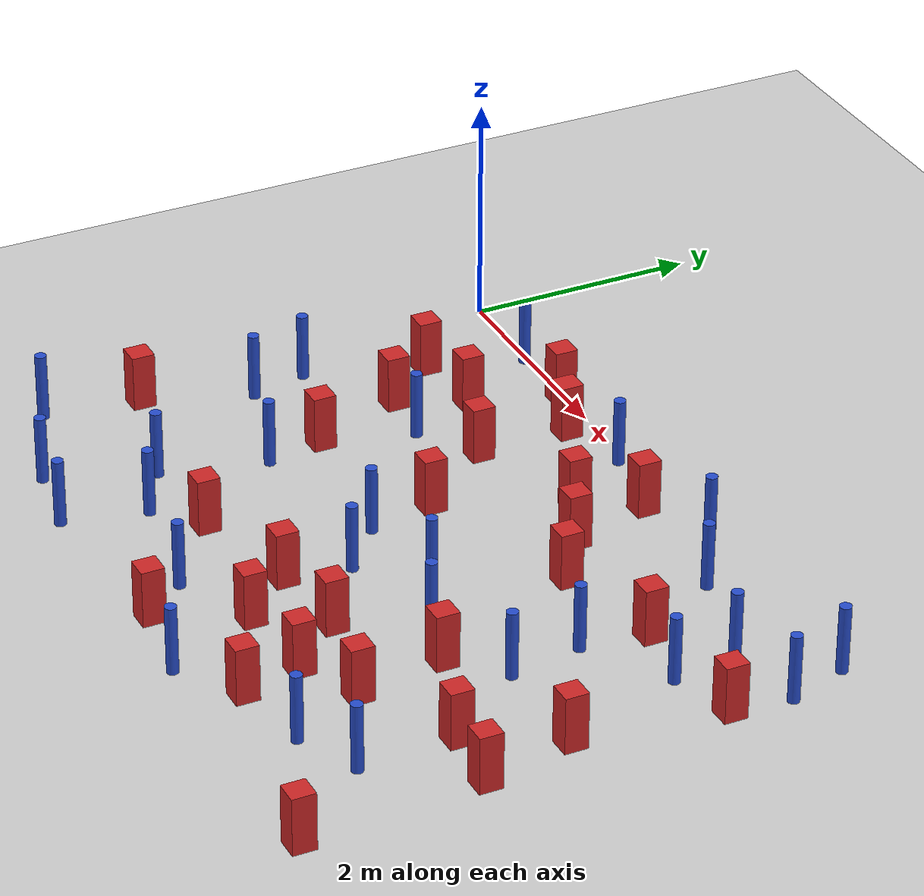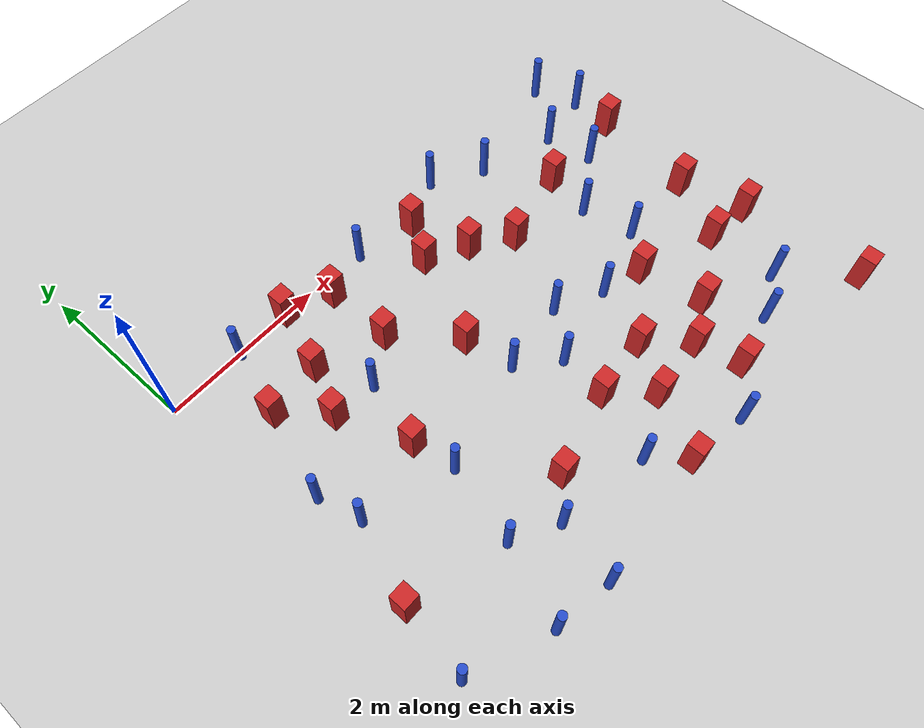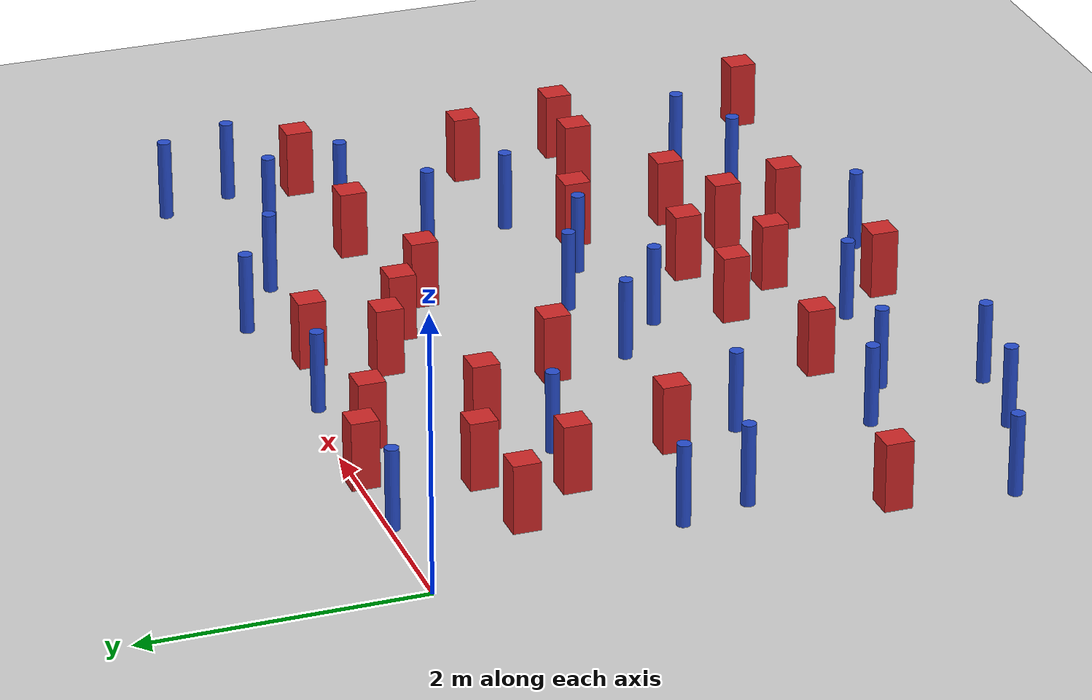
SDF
<sdf version="1.6">
 <world name="default">
  <model name="ground_plane">
   <static>1</static>
   <link name="link">
    <collision name="collision">
     <geometry><plane><normal>0 0 1</normal><size>100 100</size></plane></geometry>
     <surface><friction><ode><mu>100</mu><mu2>50</mu2></ode></friction></surface>
    </collision>
    <visual name="visual">
     <cast_shadows>0</cast_shadows>
     <geometry><plane><normal>0 0 1</normal><size>100 100</size></plane></geometry>
     <material>
      <ambient>1.0 1.0 1.0 1.0</ambient>
      <diffuse>0.8 0.8 0.8 1.0</diffuse>
      <specular>0.01 0.01 0.01 1.000000</specular>
     </material>
    </visual>
   </link>
  </model>
  <model name="NamedLocations">
   <static>true</static>
   <link name="DefaultStart"><pose>8.5 0 0 0 0 3.14</pose></link>
  </model>
  <model name="square_post_obstacle2">
   <static>true</static>
   <pose>1.61059530566 -0.0328276457561 1.91545236811e-07 -7.35059704564e-06 1.12565212e-07 2.39332434364e-05</pose>
   <link name="link">
    <pose>0 0 0.25 0 -0 0</pose>
    <inertial>
     <mass>100</mass>
     <inertia>
      <ixx>0.166667</ixx>
      <ixy>0</ixy>
      <ixz>0</ixz>
      <iyy>0.166667</iyy>
      <iyz>0</iyz>
      <izz>0.166667</izz>
     </inertia>
    </inertial>
    <collision name="collision"><geometry><box><size>.2 .2 .5</size></box></geometry></collision>
    <visual name="visual">
     <geometry><box><size>.2 .2 .5</size></box></geometry>
     <material>
      <script><name>Gazebo/Red</name><uri>file://media/materials/scripts/gazebo.material</uri></script>
     </material>
    </visual>
   </link>
  </model>
  <model name="pole_obstacle4">
   <static>true</static>
   <pose>2.73617658869 -0.0764324424072 7.38925637345e-09 -8.471706928e-08 1.24976765088e-08 -1.74513093017e-07</pose>
   <link name="link">
    <pose>0 0 0.3 0 -0 0</pose>
    <inertial>
     <mass>1</mass>
     <inertia><ixx>0.145833</ixx><ixy>0</ixy><ixz>0</ixz><iyy>0.145833</iyy><iyz>0</iyz><izz>0.125</izz></inertia>
    </inertial>
    <collision name="collision">
     <geometry><cylinder><radius>0.05</radius><length>.6</length></cylinder></geometry>
    </collision>
    <visual name="visual">
     <geometry><cylinder><radius>0.05</radius><length>.6</length></cylinder></geometry>
     <material>
      <script><name>Gazebo/Blue</name><uri>file://media/materials/scripts/gazebo.material</uri></script>
     </material>
    </visual>
   </link>
  </model>
  <model name="pole_obstacle8">
   <static>true</static>
   <pose>4.23675840631 -2.50700964312 7.38925637345e-09 -8.47170692798e-08 1.24976764937e-08 -1.74513093023e-07</pose>
   <link name="link">
    <pose>0 0 0.3 0 -0 0</pose>
    <inertial>
     <mass>1</mass>
     <inertia><ixx>0.145833</ixx><ixy>0</ixy><ixz>0</ixz><iyy>0.145833</iyy><iyz>0</iyz><izz>0.125</izz></inertia>
    </inertial>
    <collision name="collision">
     <geometry><cylinder><radius>0.05</radius><length>.6</length></cylinder></geometry>
    </collision>
    <visual name="visual">
     <geometry><cylinder><radius>0.05</radius><length>.6</length></cylinder></geometry>
     <material>
      <script><name>Gazebo/Blue</name><uri>file://media/materials/scripts/gazebo.material</uri></script>
     </material>
    </visual>
   </link>
  </model>
  <model name="square_post_obstacle21">
   <static>true</static>
   <pose>0.146579969582 -3.2607515876 1.91545236811e-07 -7.35059704564e-06 1.12565212e-07 2.39332434364e-05</pose>
   <link name="link">
    <pose>0 0 0.25 0 -0 0</pose>
    <inertial>
     <mass>100</mass>
     <inertia>
      <ixx>0.166667</ixx>
      <ixy>0</ixy>
      <ixz>0</ixz>
      <iyy>0.166667</iyy>
      <iyz>0</iyz>
      <izz>0.166667</izz>
     </inertia>
    </inertial>
    <collision name="collision"><geometry><box><size>.2 .2 .5</size></box></geometry></collision>
    <visual name="visual">
     <geometry><box><size>.2 .2 .5</size></box></geometry>
     <material>
      <script><name>Gazebo/Red</name><uri>file://media/materials/scripts/gazebo.material</uri></script>
     </material>
    </visual>
   </link>
  </model>
  <model name="pole_obstacle16">
   <static>true</static>
   <pose>3.93698666208 -4.55390573233 7.38925637345e-09 -8.47170692798e-08 1.24976765033e-08 -1.74513093019e-07</pose>
   <link name="link">
    <pose>0 0 0.3 0 -0 0</pose>
    <inertial>
     <mass>1</mass>
     <inertia><ixx>0.145833</ixx><ixy>0</ixy><ixz>0</ixz><iyy>0.145833</iyy><iyz>0</iyz><izz>0.125</izz></inertia>
    </inertial>
    <collision name="collision">
     <geometry><cylinder><radius>0.05</radius><length>.6</length></cylinder></geometry>
    </collision>
    <visual name="visual">
     <geometry><cylinder><radius>0.05</radius><length>.6</length></cylinder></geometry>
     <material>
      <script><name>Gazebo/Blue</name><uri>file://media/materials/scripts/gazebo.material</uri></script>
     </material>
    </visual>
   </link>
  </model>
  <model name="square_post_obstacle29">
   <static>true</static>
   <pose>2.1378875512 -1.06292923352 1.91545236811e-07 -7.35059704564e-06 1.12565212e-07 2.39332434364e-05</pose>
   <link name="link">
    <pose>0 0 0.25 0 -0 0</pose>
    <inertial>
     <mass>100</mass>
     <inertia>
      <ixx>0.166667</ixx>
      <ixy>0</ixy>
      <ixz>0</ixz>
      <iyy>0.166667</iyy>
      <iyz>0</iyz>
      <izz>0.166667</izz>
     </inertia>
    </inertial>
    <collision name="collision"><geometry><box><size>.2 .2 .5</size></box></geometry></collision>
    <visual name="visual">
     <geometry><box><size>.2 .2 .5</size></box></geometry>
     <material>
      <script><name>Gazebo/Red</name><uri>file://media/materials/scripts/gazebo.material</uri></script>
     </material>
    </visual>
   </link>
  </model>
  <model name="pole_obstacle25">
   <static>true</static>
   <pose>5.16710583971 -4.06470053934 7.38925637345e-09 -8.47170692796e-08 1.24976764786e-08 -1.74513093032e-07</pose>
   <link name="link">
    <pose>0 0 0.3 0 -0 0</pose>
    <inertial>
     <mass>1</mass>
     <inertia><ixx>0.145833</ixx><ixy>0</ixy><ixz>0</ixz><iyy>0.145833</iyy><iyz>0</iyz><izz>0.125</izz></inertia>
    </inertial>
    <collision name="collision">
     <geometry><cylinder><radius>0.05</radius><length>.6</length></cylinder></geometry>
    </collision>
    <visual name="visual">
     <geometry><cylinder><radius>0.05</radius><length>.6</length></cylinder></geometry>
     <material>
      <script><name>Gazebo/Blue</name><uri>file://media/materials/scripts/gazebo.material</uri></script>
     </material>
    </visual>
   </link>
  </model>
  <model name="pole_obstacle26">
   <static>true</static>
   <pose>5.70061826502 -3.81848525613 7.38925637345e-09 -8.47170692798e-08 1.24976764937e-08 -1.74513093023e-07</pose>
   <link name="link">
    <pose>0 0 0.3 0 -0 0</pose>
    <inertial>
     <mass>1</mass>
     <inertia><ixx>0.145833</ixx><ixy>0</ixy><ixz>0</ixz><iyy>0.145833</iyy><iyz>0</iyz><izz>0.125</izz></inertia>
    </inertial>
    <collision name="collision">
     <geometry><cylinder><radius>0.05</radius><length>.6</length></cylinder></geometry>
    </collision>
    <visual name="visual">
     <geometry><cylinder><radius>0.05</radius><length>.6</length></cylinder></geometry>
     <material>
      <script><name>Gazebo/Blue</name><uri>file://media/materials/scripts/gazebo.material</uri></script>
     </material>
    </visual>
   </link>
  </model>
  <model name="pole_obstacle28">
   <static>true</static>
   <pose>1.7791517619 -3.85272754722 7.38925637345e-09 -8.47170692799e-08 1.24976765053e-08 -1.74513093017e-07</pose>
   <link name="link">
    <pose>0 0 0.3 0 -0 0</pose>
    <inertial>
     <mass>1</mass>
     <inertia><ixx>0.145833</ixx><ixy>0</ixy><ixz>0</ixz><iyy>0.145833</iyy><iyz>0</iyz><izz>0.125</izz></inertia>
    </inertial>
    <collision name="collision">
     <geometry><cylinder><radius>0.05</radius><length>.6</length></cylinder></geometry>
    </collision>
    <visual name="visual">
     <geometry><cylinder><radius>0.05</radius><length>.6</length></cylinder></geometry>
     <material>
      <script><name>Gazebo/Blue</name><uri>file://media/materials/scripts/gazebo.material</uri></script>
     </material>
    </visual>
   </link>
  </model>
  <model name="pole_obstacle34">
   <static>true</static>
   <pose>0.469606990065 -2.35509854013 7.38925637345e-09 -8.471706928e-08 1.24976765089e-08 -1.74513093016e-07</pose>
   <link name="link">
    <pose>0 0 0.3 0 -0 0</pose>
    <inertial>
     <mass>1</mass>
     <inertia><ixx>0.145833</ixx><ixy>0</ixy><ixz>0</ixz><iyy>0.145833</iyy><iyz>0</iyz><izz>0.125</izz></inertia>
    </inertial>
    <collision name="collision">
     <geometry><cylinder><radius>0.05</radius><length>.6</length></cylinder></geometry>
    </collision>
    <visual name="visual">
     <geometry><cylinder><radius>0.05</radius><length>.6</length></cylinder></geometry>
     <material>
      <script><name>Gazebo/Blue</name><uri>file://media/materials/scripts/gazebo.material</uri></script>
     </material>
    </visual>
   </link>
  </model>
  <model name="square_post_obstacle36">
   <static>true</static>
   <pose>6.26679489834 -0.997740800648 1.91545236811e-07 -7.35059704564e-06 1.12565212e-07 2.39332434364e-05</pose>
   <link name="link">
    <pose>0 0 0.25 0 -0 0</pose>
    <inertial>
     <mass>100</mass>
     <inertia>
      <ixx>0.166667</ixx>
      <ixy>0</ixy>
      <ixz>0</ixz>
      <iyy>0.166667</iyy>
      <iyz>0</iyz>
      <izz>0.166667</izz>
     </inertia>
    </inertial>
    <collision name="collision"><geometry><box><size>.2 .2 .5</size></box></geometry></collision>
    <visual name="visual">
     <geometry><box><size>.2 .2 .5</size></box></geometry>
     <material>
      <script><name>Gazebo/Red</name><uri>file://media/materials/scripts/gazebo.material</uri></script>
     </material>
    </visual>
   </link>
  </model>
  <model name="square_post_obstacle42">
   <static>true</static>
   <pose>1.34623121676 -0.776068083378 1.91545236811e-07 -7.35059704564e-06 1.12565212e-07 2.39332434364e-05</pose>
   <link name="link">
    <pose>0 0 0.25 0 -0 0</pose>
    <inertial>
     <mass>100</mass>
     <inertia>
      <ixx>0.166667</ixx>
      <ixy>0</ixy>
      <ixz>0</ixz>
      <iyy>0.166667</iyy>
      <iyz>0</iyz>
      <izz>0.166667</izz>
     </inertia>
    </inertial>
    <collision name="collision"><geometry><box><size>.2 .2 .5</size></box></geometry></collision>
    <visual name="visual">
     <geometry><box><size>.2 .2 .5</size></box></geometry>
     <material>
      <script><name>Gazebo/Red</name><uri>file://media/materials/scripts/gazebo.material</uri></script>
     </material>
    </visual>
   </link>
  </model>
  <model name="pole_obstacle47">
   <static>true</static>
   <pose>6.13645625663 0.0512715596379 7.38925637345e-09 -8.471706928e-08 1.24976765155e-08 -1.74513093014e-07</pose>
   <link name="link">
    <pose>0 0 0.3 0 -0 0</pose>
    <inertial>
     <mass>1</mass>
     <inertia><ixx>0.145833</ixx><ixy>0</ixy><ixz>0</ixz><iyy>0.145833</iyy><iyz>0</iyz><izz>0.125</izz></inertia>
    </inertial>
    <collision name="collision">
     <geometry><cylinder><radius>0.05</radius><length>.6</length></cylinder></geometry>
    </collision>
    <visual name="visual">
     <geometry><cylinder><radius>0.05</radius><length>.6</length></cylinder></geometry>
     <material>
      <script><name>Gazebo/Blue</name><uri>file://media/materials/scripts/gazebo.material</uri></script>
     </material>
    </visual>
   </link>
  </model>
  <model name="pole_obstacle56">
   <static>true</static>
   <pose>0.344715864385 -1.84982258749 7.38925637345e-09 -8.47170692798e-08 1.24976765025e-08 -1.74513093018e-07</pose>
   <link name="link">
    <pose>0 0 0.3 0 -0 0</pose>
    <inertial>
     <mass>1</mass>
     <inertia><ixx>0.145833</ixx><ixy>0</ixy><ixz>0</ixz><iyy>0.145833</iyy><iyz>0</iyz><izz>0.125</izz></inertia>
    </inertial>
    <collision name="collision">
     <geometry><cylinder><radius>0.05</radius><length>.6</length></cylinder></geometry>
    </collision>
    <visual name="visual">
     <geometry><cylinder><radius>0.05</radius><length>.6</length></cylinder></geometry>
     <material>
      <script><name>Gazebo/Blue</name><uri>file://media/materials/scripts/gazebo.material</uri></script>
     </material>
    </visual>
   </link>
  </model>
  <model name="pole_obstacle62">
   <static>true</static>
   <pose>1.50318069083 -2.67019156084 7.38925637345e-09 -8.47170692799e-08 1.24976765053e-08 -1.74513093017e-07</pose>
   <link name="link">
    <pose>0 0 0.3 0 -0 0</pose>
    <inertial>
     <mass>1</mass>
     <inertia><ixx>0.145833</ixx><ixy>0</ixy><ixz>0</ixz><iyy>0.145833</iyy><iyz>0</iyz><izz>0.125</izz></inertia>
    </inertial>
    <collision name="collision">
     <geometry><cylinder><radius>0.05</radius><length>.6</length></cylinder></geometry>
    </collision>
    <visual name="visual">
     <geometry><cylinder><radius>0.05</radius><length>.6</length></cylinder></geometry>
     <material>
      <script><name>Gazebo/Blue</name><uri>file://media/materials/scripts/gazebo.material</uri></script>
     </material>
    </visual>
   </link>
  </model>
  <model name="square_post_obstacle64">
   <static>true</static>
   <pose>4.85339600324 -3.4198819224 1.91545236811e-07 -7.35059704564e-06 1.12565212e-07 2.39332434364e-05</pose>
   <link name="link">
    <pose>0 0 0.25 0 -0 0</pose>
    <inertial>
     <mass>100</mass>
     <inertia>
      <ixx>0.166667</ixx>
      <ixy>0</ixy>
      <ixz>0</ixz>
      <iyy>0.166667</iyy>
      <iyz>0</iyz>
      <izz>0.166667</izz>
     </inertia>
    </inertial>
    <collision name="collision"><geometry><box><size>.2 .2 .5</size></box></geometry></collision>
    <visual name="visual">
     <geometry><box><size>.2 .2 .5</size></box></geometry>
     <material>
      <script><name>Gazebo/Red</name><uri>file://media/materials/scripts/gazebo.material</uri></script>
     </material>
    </visual>
   </link>
  </model>
  <model name="square_post_obstacle65">
   <static>true</static>
   <pose>3.56748725642 -3.73807085254 1.91545236811e-07 -7.35059704564e-06 1.12565212e-07 2.39332434364e-05</pose>
   <link name="link">
    <pose>0 0 0.25 0 -0 0</pose>
    <inertial>
     <mass>100</mass>
     <inertia>
      <ixx>0.166667</ixx>
      <ixy>0</ixy>
      <ixz>0</ixz>
      <iyy>0.166667</iyy>
      <iyz>0</iyz>
      <izz>0.166667</izz>
     </inertia>
    </inertial>
    <collision name="collision"><geometry><box><size>.2 .2 .5</size></box></geometry></collision>
    <visual name="visual">
     <geometry><box><size>.2 .2 .5</size></box></geometry>
     <material>
      <script><name>Gazebo/Red</name><uri>file://media/materials/scripts/gazebo.material</uri></script>
     </material>
    </visual>
   </link>
  </model>
  <model name="pole_obstacle65">
   <static>true</static>
   <pose>5.11539753924 -2.25362012433 7.38925637345e-09 -8.47170692798e-08 1.24976764937e-08 -1.74513093023e-07</pose>
   <link name="link">
    <pose>0 0 0.3 0 -0 0</pose>
    <inertial>
     <mass>1</mass>
     <inertia><ixx>0.145833</ixx><ixy>0</ixy><ixz>0</ixz><iyy>0.145833</iyy><iyz>0</iyz><izz>0.125</izz></inertia>
    </inertial>
    <collision name="collision">
     <geometry><cylinder><radius>0.05</radius><length>.6</length></cylinder></geometry>
    </collision>
    <visual name="visual">
     <geometry><cylinder><radius>0.05</radius><length>.6</length></cylinder></geometry>
     <material>
      <script><name>Gazebo/Blue</name><uri>file://media/materials/scripts/gazebo.material</uri></script>
     </material>
    </visual>
   </link>
  </model>
  <model name="pole_obstacle71">
   <static>true</static>
   <pose>1.27139068139 -3.57328264883 7.38925637345e-09 -8.47170692799e-08 1.24976765053e-08 -1.74513093017e-07</pose>
   <link name="link">
    <pose>0 0 0.3 0 -0 0</pose>
    <inertial>
     <mass>1</mass>
     <inertia><ixx>0.145833</ixx><ixy>0</ixy><ixz>0</ixz><iyy>0.145833</iyy><iyz>0</iyz><izz>0.125</izz></inertia>
    </inertial>
    <collision name="collision">
     <geometry><cylinder><radius>0.05</radius><length>.6</length></cylinder></geometry>
    </collision>
    <visual name="visual">
     <geometry><cylinder><radius>0.05</radius><length>.6</length></cylinder></geometry>
     <material>
      <script><name>Gazebo/Blue</name><uri>file://media/materials/scripts/gazebo.material</uri></script>
     </material>
    </visual>
   </link>
  </model>
  <model name="pole_obstacle77">
   <static>true</static>
   <pose>2.7989449195 -2.34813624145 7.38925637345e-09 -8.47170692798e-08 1.24976764939e-08 -1.74513093025e-07</pose>
   <link name="link">
    <pose>0 0 0.3 0 -0 0</pose>
    <inertial>
     <mass>1</mass>
     <inertia><ixx>0.145833</ixx><ixy>0</ixy><ixz>0</ixz><iyy>0.145833</iyy><iyz>0</iyz><izz>0.125</izz></inertia>
    </inertial>
    <collision name="collision">
     <geometry><cylinder><radius>0.05</radius><length>.6</length></cylinder></geometry>
    </collision>
    <visual name="visual">
     <geometry><cylinder><radius>0.05</radius><length>.6</length></cylinder></geometry>
     <material>
      <script><name>Gazebo/Blue</name><uri>file://media/materials/scripts/gazebo.material</uri></script>
     </material>
    </visual>
   </link>
  </model>
  <model name="square_post_obstacle78">
   <static>true</static>
   <pose>5.09931796158 -1.05200808845 1.91545236811e-07 -7.35059704564e-06 1.12565212e-07 2.39332434364e-05</pose>
   <link name="link">
    <pose>0 0 0.25 0 -0 0</pose>
    <inertial>
     <mass>100</mass>
     <inertia>
      <ixx>0.166667</ixx>
      <ixy>0</ixy>
      <ixz>0</ixz>
      <iyy>0.166667</iyy>
      <iyz>0</iyz>
      <izz>0.166667</izz>
     </inertia>
    </inertial>
    <collision name="collision"><geometry><box><size>.2 .2 .5</size></box></geometry></collision>
    <visual name="visual">
     <geometry><box><size>.2 .2 .5</size></box></geometry>
     <material>
      <script><name>Gazebo/Red</name><uri>file://media/materials/scripts/gazebo.material</uri></script>
     </material>
    </visual>
   </link>
  </model>
  <model name="square_post_obstacle80">
   <static>true</static>
   <pose>4.72459626377 -2.6483694078 1.91545236811e-07 -7.35059704564e-06 1.12565212e-07 2.39332434364e-05</pose>
   <link name="link">
    <pose>0 0 0.25 0 -0 0</pose>
    <inertial>
     <mass>100</mass>
     <inertia>
      <ixx>0.166667</ixx>
      <ixy>0</ixy>
      <ixz>0</ixz>
      <iyy>0.166667</iyy>
      <iyz>0</iyz>
      <izz>0.166667</izz>
     </inertia>
    </inertial>
    <collision name="collision"><geometry><box><size>.2 .2 .5</size></box></geometry></collision>
    <visual name="visual">
     <geometry><box><size>.2 .2 .5</size></box></geometry>
     <material>
      <script><name>Gazebo/Red</name><uri>file://media/materials/scripts/gazebo.material</uri></script>
     </material>
    </visual>
   </link>
  </model>
  <model name="pole_obstacle87">
   <static>true</static>
   <pose>4.08213212582 0.0347120378168 7.38925637345e-09 -8.471706928e-08 1.24976765155e-08 -1.74513093014e-07</pose>
   <link name="link">
    <pose>0 0 0.3 0 -0 0</pose>
    <inertial>
     <mass>1</mass>
     <inertia><ixx>0.145833</ixx><ixy>0</ixy><ixz>0</ixz><iyy>0.145833</iyy><iyz>0</iyz><izz>0.125</izz></inertia>
    </inertial>
    <collision name="collision">
     <geometry><cylinder><radius>0.05</radius><length>.6</length></cylinder></geometry>
    </collision>
    <visual name="visual">
     <geometry><cylinder><radius>0.05</radius><length>.6</length></cylinder></geometry>
     <material>
      <script><name>Gazebo/Blue</name><uri>file://media/materials/scripts/gazebo.material</uri></script>
     </material>
    </visual>
   </link>
  </model>
  <model name="square_post_obstacle81">
   <static>true</static>
   <pose>3.17203997662 -0.708834607267 1.91545236811e-07 -7.35059704564e-06 1.12565212e-07 2.39332434364e-05</pose>
   <link name="link">
    <pose>0 0 0.25 0 -0 0</pose>
    <inertial>
     <mass>100</mass>
     <inertia>
      <ixx>0.166667</ixx>
      <ixy>0</ixy>
      <ixz>0</ixz>
      <iyy>0.166667</iyy>
      <iyz>0</iyz>
      <izz>0.166667</izz>
     </inertia>
    </inertial>
    <collision name="collision"><geometry><box><size>.2 .2 .5</size></box></geometry></collision>
    <visual name="visual">
     <geometry><box><size>.2 .2 .5</size></box></geometry>
     <material>
      <script><name>Gazebo/Red</name><uri>file://media/materials/scripts/gazebo.material</uri></script>
     </material>
    </visual>
   </link>
  </model>
  <model name="pole_obstacle104">
   <static>true</static>
   <pose>2.86870506734 -4.04880718577 7.38925637345e-09 -8.47170692799e-08 1.24976764995e-08 -1.74513093021e-07</pose>
   <link name="link">
    <pose>0 0 0.3 0 -0 0</pose>
    <inertial>
     <mass>1</mass>
     <inertia><ixx>0.145833</ixx><ixy>0</ixy><ixz>0</ixz><iyy>0.145833</iyy><iyz>0</iyz><izz>0.125</izz></inertia>
    </inertial>
    <collision name="collision">
     <geometry><cylinder><radius>0.05</radius><length>.6</length></cylinder></geometry>
    </collision>
    <visual name="visual">
     <geometry><cylinder><radius>0.05</radius><length>.6</length></cylinder></geometry>
     <material>
      <script><name>Gazebo/Blue</name><uri>file://media/materials/scripts/gazebo.material</uri></script>
     </material>
    </visual>
   </link>
  </model>
  <model name="pole_obstacle109">
   <static>true</static>
   <pose>4.67372574074 -0.314949304033 7.38925637345e-09 -8.47170692798e-08 1.24976765003e-08 -1.7451309302e-07</pose>
   <link name="link">
    <pose>0 0 0.3 0 -0 0</pose>
    <inertial>
     <mass>1</mass>
     <inertia><ixx>0.145833</ixx><ixy>0</ixy><ixz>0</ixz><iyy>0.145833</iyy><iyz>0</iyz><izz>0.125</izz></inertia>
    </inertial>
    <collision name="collision">
     <geometry><cylinder><radius>0.05</radius><length>.6</length></cylinder></geometry>
    </collision>
    <visual name="visual">
     <geometry><cylinder><radius>0.05</radius><length>.6</length></cylinder></geometry>
     <material>
      <script><name>Gazebo/Blue</name><uri>file://media/materials/scripts/gazebo.material</uri></script>
     </material>
    </visual>
   </link>
  </model>
  <model name="square_post_obstacle100">
   <static>true</static>
   <pose>3.662148018 -0.959219348587 1.91545236811e-07 -7.35059704564e-06 1.12565212e-07 2.39332434364e-05</pose>
   <link name="link">
    <pose>0 0 0.25 0 -0 0</pose>
    <inertial>
     <mass>100</mass>
     <inertia>
      <ixx>0.166667</ixx>
      <ixy>0</ixy>
      <ixz>0</ixz>
      <iyy>0.166667</iyy>
      <iyz>0</iyz>
      <izz>0.166667</izz>
     </inertia>
    </inertial>
    <collision name="collision"><geometry><box><size>.2 .2 .5</size></box></geometry></collision>
    <visual name="visual">
     <geometry><box><size>.2 .2 .5</size></box></geometry>
     <material>
      <script><name>Gazebo/Red</name><uri>file://media/materials/scripts/gazebo.material</uri></script>
     </material>
    </visual>
   </link>
  </model>
  <model name="square_post_obstacle102">
   <static>true</static>
   <pose>3.16075236366 -3.28418885196 1.91545236811e-07 -7.35059704564e-06 1.12565212e-07 2.39332434364e-05</pose>
   <link name="link">
    <pose>0 0 0.25 0 -0 0</pose>
    <inertial>
     <mass>100</mass>
     <inertia>
      <ixx>0.166667</ixx>
      <ixy>0</ixy>
      <ixz>0</ixz>
      <iyy>0.166667</iyy>
      <iyz>0</iyz>
      <izz>0.166667</izz>
     </inertia>
    </inertial>
    <collision name="collision"><geometry><box><size>.2 .2 .5</size></box></geometry></collision>
    <visual name="visual">
     <geometry><box><size>.2 .2 .5</size></box></geometry>
     <material>
      <script><name>Gazebo/Red</name><uri>file://media/materials/scripts/gazebo.material</uri></script>
     </material>
    </visual>
   </link>
  </model>
  <model name="pole_obstacle120">
   <static>true</static>
   <pose>0.0106973379066 -4.08629757955 7.38925637345e-09 -8.471706928e-08 1.24976765094e-08 -1.74513093017e-07</pose>
   <link name="link">
    <pose>0 0 0.3 0 -0 0</pose>
    <inertial>
     <mass>1</mass>
     <inertia><ixx>0.145833</ixx><ixy>0</ixy><ixz>0</ixz><iyy>0.145833</iyy><iyz>0</iyz><izz>0.125</izz></inertia>
    </inertial>
    <collision name="collision">
     <geometry><cylinder><radius>0.05</radius><length>.6</length></cylinder></geometry>
    </collision>
    <visual name="visual">
     <geometry><cylinder><radius>0.05</radius><length>.6</length></cylinder></geometry>
     <material>
      <script><name>Gazebo/Blue</name><uri>file://media/materials/scripts/gazebo.material</uri></script>
     </material>
    </visual>
   </link>
  </model>
  <model name="pole_obstacle124">
   <static>true</static>
   <pose>1.62397733272 -1.3896870218 7.38925637345e-09 -8.471706928e-08 1.24976765079e-08 -1.74513093017e-07</pose>
   <link name="link">
    <pose>0 0 0.3 0 -0 0</pose>
    <inertial>
     <mass>1</mass>
     <inertia><ixx>0.145833</ixx><ixy>0</ixy><ixz>0</ixz><iyy>0.145833</iyy><iyz>0</iyz><izz>0.125</izz></inertia>
    </inertial>
    <collision name="collision">
     <geometry><cylinder><radius>0.05</radius><length>.6</length></cylinder></geometry>
    </collision>
    <visual name="visual">
     <geometry><cylinder><radius>0.05</radius><length>.6</length></cylinder></geometry>
     <material>
      <script><name>Gazebo/Blue</name><uri>file://media/materials/scripts/gazebo.material</uri></script>
     </material>
    </visual>
   </link>
  </model>
  <model name="pole_obstacle126">
   <static>true</static>
   <pose>3.67093834897 -2.23318443548 7.38925637345e-09 -8.47170692798e-08 1.24976764939e-08 -1.74513093025e-07</pose>
   <link name="link">
    <pose>0 0 0.3 0 -0 0</pose>
    <inertial>
     <mass>1</mass>
     <inertia><ixx>0.145833</ixx><ixy>0</ixy><ixz>0</ixz><iyy>0.145833</iyy><iyz>0</iyz><izz>0.125</izz></inertia>
    </inertial>
    <collision name="collision">
     <geometry><cylinder><radius>0.05</radius><length>.6</length></cylinder></geometry>
    </collision>
    <visual name="visual">
     <geometry><cylinder><radius>0.05</radius><length>.6</length></cylinder></geometry>
     <material>
      <script><name>Gazebo/Blue</name><uri>file://media/materials/scripts/gazebo.material</uri></script>
     </material>
    </visual>
   </link>
  </model>
  <model name="square_post_obstacle113">
   <static>true</static>
   <pose>4.34036449365 -3.67181402371 1.91545236811e-07 -7.35059704564e-06 1.12565212e-07 2.39332434364e-05</pose>
   <link name="link">
    <pose>0 0 0.25 0 -0 0</pose>
    <inertial>
     <mass>100</mass>
     <inertia>
      <ixx>0.166667</ixx>
      <ixy>0</ixy>
      <ixz>0</ixz>
      <iyy>0.166667</iyy>
      <iyz>0</iyz>
      <izz>0.166667</izz>
     </inertia>
    </inertial>
    <collision name="collision"><geometry><box><size>.2 .2 .5</size></box></geometry></collision>
    <visual name="visual">
     <geometry><box><size>.2 .2 .5</size></box></geometry>
     <material>
      <script><name>Gazebo/Red</name><uri>file://media/materials/scripts/gazebo.material</uri></script>
     </material>
    </visual>
   </link>
  </model>
  <model name="pole_obstacle128">
   <static>true</static>
   <pose>0.939144235032 -4.45148834467 7.38925637345e-09 -8.471706928e-08 1.24976765086e-08 -1.74513093015e-07</pose>
   <link name="link">
    <pose>0 0 0.3 0 -0 0</pose>
    <inertial>
     <mass>1</mass>
     <inertia><ixx>0.145833</ixx><ixy>0</ixy><ixz>0</ixz><iyy>0.145833</iyy><iyz>0</iyz><izz>0.125</izz></inertia>
    </inertial>
    <collision name="collision">
     <geometry><cylinder><radius>0.05</radius><length>.6</length></cylinder></geometry>
    </collision>
    <visual name="visual">
     <geometry><cylinder><radius>0.05</radius><length>.6</length></cylinder></geometry>
     <material>
      <script><name>Gazebo/Blue</name><uri>file://media/materials/scripts/gazebo.material</uri></script>
     </material>
    </visual>
   </link>
  </model>
  <model name="pole_obstacle130">
   <static>true</static>
   <pose>5.00984520852 -1.61740965451 7.38925637345e-09 -8.471706928e-08 1.24976765134e-08 -1.74513093015e-07</pose>
   <link name="link">
    <pose>0 0 0.3 0 -0 0</pose>
    <inertial>
     <mass>1</mass>
     <inertia><ixx>0.145833</ixx><ixy>0</ixy><ixz>0</ixz><iyy>0.145833</iyy><iyz>0</iyz><izz>0.125</izz></inertia>
    </inertial>
    <collision name="collision">
     <geometry><cylinder><radius>0.05</radius><length>.6</length></cylinder></geometry>
    </collision>
    <visual name="visual">
     <geometry><cylinder><radius>0.05</radius><length>.6</length></cylinder></geometry>
     <material>
      <script><name>Gazebo/Blue</name><uri>file://media/materials/scripts/gazebo.material</uri></script>
     </material>
    </visual>
   </link>
  </model>
  <model name="square_post_obstacle127">
   <static>true</static>
   <pose>6.09171476696 -2.25492640839 1.91545236811e-07 -7.35059704564e-06 1.12565212e-07 2.39332434364e-05</pose>
   <link name="link">
    <pose>0 0 0.25 0 -0 0</pose>
    <inertial>
     <mass>100</mass>
     <inertia>
      <ixx>0.166667</ixx>
      <ixy>0</ixy>
      <ixz>0</ixz>
      <iyy>0.166667</iyy>
      <iyz>0</iyz>
      <izz>0.166667</izz>
     </inertia>
    </inertial>
    <collision name="collision"><geometry><box><size>.2 .2 .5</size></box></geometry></collision>
    <visual name="visual">
     <geometry><box><size>.2 .2 .5</size></box></geometry>
     <material>
      <script><name>Gazebo/Red</name><uri>file://media/materials/scripts/gazebo.material</uri></script>
     </material>
    </visual>
   </link>
  </model>
  <model name="square_post_obstacle130">
   <static>true</static>
   <pose>4.12660198588 -1.27682318704 1.91545236811e-07 -7.35059704564e-06 1.12565212e-07 2.39332434364e-05</pose>
   <link name="link">
    <pose>0 0 0.25 0 -0 0</pose>
    <inertial>
     <mass>100</mass>
     <inertia>
      <ixx>0.166667</ixx>
      <ixy>0</ixy>
      <ixz>0</ixz>
      <iyy>0.166667</iyy>
      <iyz>0</iyz>
      <izz>0.166667</izz>
     </inertia>
    </inertial>
    <collision name="collision"><geometry><box><size>.2 .2 .5</size></box></geometry></collision>
    <visual name="visual">
     <geometry><box><size>.2 .2 .5</size></box></geometry>
     <material>
      <script><name>Gazebo/Red</name><uri>file://media/materials/scripts/gazebo.material</uri></script>
     </material>
    </visual>
   </link>
  </model>
  <model name="square_post_obstacle143">
   <static>true</static>
   <pose>2.68973216567 -1.76808653397 1.91545236811e-07 -7.35059704564e-06 1.12565212e-07 2.39332434364e-05</pose>
   <link name="link">
    <pose>0 0 0.25 0 -0 0</pose>
    <inertial>
     <mass>100</mass>
     <inertia>
      <ixx>0.166667</ixx>
      <ixy>0</ixy>
      <ixz>0</ixz>
      <iyy>0.166667</iyy>
      <iyz>0</iyz>
      <izz>0.166667</izz>
     </inertia>
    </inertial>
    <collision name="collision"><geometry><box><size>.2 .2 .5</size></box></geometry></collision>
    <visual name="visual">
     <geometry><box><size>.2 .2 .5</size></box></geometry>
     <material>
      <script><name>Gazebo/Red</name><uri>file://media/materials/scripts/gazebo.material</uri></script>
     </material>
    </visual>
   </link>
  </model>
  <model name="square_post_obstacle153">
   <static>true</static>
   <pose>5.68228585424 -2.99391842571 1.91545236811e-07 -7.35059704564e-06 1.12565212e-07 2.39332434364e-05</pose>
   <link name="link">
    <pose>0 0 0.25 0 -0 0</pose>
    <inertial>
     <mass>100</mass>
     <inertia>
      <ixx>0.166667</ixx>
      <ixy>0</ixy>
      <ixz>0</ixz>
      <iyy>0.166667</iyy>
      <iyz>0</iyz>
      <izz>0.166667</izz>
     </inertia>
    </inertial>
    <collision name="collision"><geometry><box><size>.2 .2 .5</size></box></geometry></collision>
    <visual name="visual">
     <geometry><box><size>.2 .2 .5</size></box></geometry>
     <material>
      <script><name>Gazebo/Red</name><uri>file://media/materials/scripts/gazebo.material</uri></script>
     </material>
    </visual>
   </link>
  </model>
  <model name="pole_obstacle165">
   <static>true</static>
   <pose>6.31590033848 -0.475854399833 7.38925637345e-09 -8.471706928e-08 1.24976765164e-08 -1.74513093013e-07</pose>
   <link name="link">
    <pose>0 0 0.3 0 -0 0</pose>
    <inertial>
     <mass>1</mass>
     <inertia><ixx>0.145833</ixx><ixy>0</ixy><ixz>0</ixz><iyy>0.145833</iyy><iyz>0</iyz><izz>0.125</izz></inertia>
    </inertial>
    <collision name="collision">
     <geometry><cylinder><radius>0.05</radius><length>.6</length></cylinder></geometry>
    </collision>
    <visual name="visual">
     <geometry><cylinder><radius>0.05</radius><length>.6</length></cylinder></geometry>
     <material>
      <script><name>Gazebo/Blue</name><uri>file://media/materials/scripts/gazebo.material</uri></script>
     </material>
    </visual>
   </link>
  </model>
  <model name="square_post_obstacle166">
   <static>true</static>
   <pose>0.681499119694 -0.847562115851 1.91545236811e-07 -7.35059704564e-06 1.12565212e-07 2.39332434364e-05</pose>
   <link name="link">
    <pose>0 0 0.25 0 -0 0</pose>
    <inertial>
     <mass>100</mass>
     <inertia>
      <ixx>0.166667</ixx>
      <ixy>0</ixy>
      <ixz>0</ixz>
      <iyy>0.166667</iyy>
      <iyz>0</iyz>
      <izz>0.166667</izz>
     </inertia>
    </inertial>
    <collision name="collision"><geometry><box><size>.2 .2 .5</size></box></geometry></collision>
    <visual name="visual">
     <geometry><box><size>.2 .2 .5</size></box></geometry>
     <material>
      <script><name>Gazebo/Red</name><uri>file://media/materials/scripts/gazebo.material</uri></script>
     </material>
    </visual>
   </link>
  </model>
  <model name="square_post_obstacle171">
   <static>true</static>
   <pose>3.46454592917 -0.235004821178 1.91545236811e-07 -7.35059704564e-06 1.12565212e-07 2.39332434364e-05</pose>
   <link name="link">
    <pose>0 0 0.25 0 -0 0</pose>
    <inertial>
     <mass>100</mass>
     <inertia>
      <ixx>0.166667</ixx>
      <ixy>0</ixy>
      <ixz>0</ixz>
      <iyy>0.166667</iyy>
      <iyz>0</iyz>
      <izz>0.166667</izz>
     </inertia>
    </inertial>
    <collision name="collision"><geometry><box><size>.2 .2 .5</size></box></geometry></collision>
    <visual name="visual">
     <geometry><box><size>.2 .2 .5</size></box></geometry>
     <material>
      <script><name>Gazebo/Red</name><uri>file://media/materials/scripts/gazebo.material</uri></script>
     </material>
    </visual>
   </link>
  </model>
  <model name="square_post_obstacle172">
   <static>true</static>
   <pose>6.34941667171 -4.57788233304 1.91545236811e-07 -7.35059704564e-06 1.12565212e-07 2.39332434364e-05</pose>
   <link name="link">
    <pose>0 0 0.25 0 -0 0</pose>
    <inertial>
     <mass>100</mass>
     <inertia>
      <ixx>0.166667</ixx>
      <ixy>0</ixy>
      <ixz>0</ixz>
      <iyy>0.166667</iyy>
      <iyz>0</iyz>
      <izz>0.166667</izz>
     </inertia>
    </inertial>
    <collision name="collision"><geometry><box><size>.2 .2 .5</size></box></geometry></collision>
    <visual name="visual">
     <geometry><box><size>.2 .2 .5</size></box></geometry>
     <material>
      <script><name>Gazebo/Red</name><uri>file://media/materials/scripts/gazebo.material</uri></script>
     </material>
    </visual>
   </link>
  </model>
  <model name="pole_obstacle185">
   <static>true</static>
   <pose>5.61284703899 -0.590283679597 7.38925637345e-09 -8.47170692799e-08 1.24976765038e-08 -1.74513093018e-07</pose>
   <link name="link">
    <pose>0 0 0.3 0 -0 0</pose>
    <inertial>
     <mass>1</mass>
     <inertia><ixx>0.145833</ixx><ixy>0</ixy><ixz>0</ixz><iyy>0.145833</iyy><iyz>0</iyz><izz>0.125</izz></inertia>
    </inertial>
    <collision name="collision">
     <geometry><cylinder><radius>0.05</radius><length>.6</length></cylinder></geometry>
    </collision>
    <visual name="visual">
     <geometry><cylinder><radius>0.05</radius><length>.6</length></cylinder></geometry>
     <material>
      <script><name>Gazebo/Blue</name><uri>file://media/materials/scripts/gazebo.material</uri></script>
     </material>
    </visual>
   </link>
  </model>
  <model name="square_post_obstacle173">
   <static>true</static>
   <pose>3.92316273953 -3.20793788575 1.91545236811e-07 -7.35059704564e-06 1.12565212e-07 2.39332434364e-05</pose>
   <link name="link">
    <pose>0 0 0.25 0 -0 0</pose>
    <inertial>
     <mass>100</mass>
     <inertia>
      <ixx>0.166667</ixx>
      <ixy>0</ixy>
      <ixz>0</ixz>
      <iyy>0.166667</iyy>
      <iyz>0</iyz>
      <izz>0.166667</izz>
     </inertia>
    </inertial>
    <collision name="collision"><geometry><box><size>.2 .2 .5</size></box></geometry></collision>
    <visual name="visual">
     <geometry><box><size>.2 .2 .5</size></box></geometry>
     <material>
      <script><name>Gazebo/Red</name><uri>file://media/materials/scripts/gazebo.material</uri></script>
     </material>
    </visual>
   </link>
  </model>
  <model name="square_post_obstacle184">
   <static>true</static>
   <pose>6.26685782234 -3.04559530051 1.91545236811e-07 -7.35059704564e-06 1.12565212e-07 2.39332434364e-05</pose>
   <link name="link">
    <pose>0 0 0.25 0 -0 0</pose>
    <inertial>
     <mass>100</mass>
     <inertia>
      <ixx>0.166667</ixx>
      <ixy>0</ixy>
      <ixz>0</ixz>
      <iyy>0.166667</iyy>
      <iyz>0</iyz>
      <izz>0.166667</izz>
     </inertia>
    </inertial>
    <collision name="collision"><geometry><box><size>.2 .2 .5</size></box></geometry></collision>
    <visual name="visual">
     <geometry><box><size>.2 .2 .5</size></box></geometry>
     <material>
      <script><name>Gazebo/Red</name><uri>file://media/materials/scripts/gazebo.material</uri></script>
     </material>
    </visual>
   </link>
  </model>
  <model name="square_post_obstacle191">
   <static>true</static>
   <pose>1.09443603973 -1.34567428648 1.91545236811e-07 -7.35059704564e-06 1.12565212e-07 2.39332434364e-05</pose>
   <link name="link">
    <pose>0 0 0.25 0 -0 0</pose>
    <inertial>
     <mass>100</mass>
     <inertia>
      <ixx>0.166667</ixx>
      <ixy>0</ixy>
      <ixz>0</ixz>
      <iyy>0.166667</iyy>
      <iyz>0</iyz>
      <izz>0.166667</izz>
     </inertia>
    </inertial>
    <collision name="collision"><geometry><box><size>.2 .2 .5</size></box></geometry></collision>
    <visual name="visual">
     <geometry><box><size>.2 .2 .5</size></box></geometry>
     <material>
      <script><name>Gazebo/Red</name><uri>file://media/materials/scripts/gazebo.material</uri></script>
     </material>
    </visual>
   </link>
  </model>
  <model name="square_post_obstacle193">
   <static>true</static>
   <pose>2.14258169579 -0.249772548937 1.91545236811e-07 -7.35059704564e-06 1.12565212e-07 2.39332434364e-05</pose>
   <link name="link">
    <pose>0 0 0.25 0 -0 0</pose>
    <inertial>
     <mass>100</mass>
     <inertia>
      <ixx>0.166667</ixx>
      <ixy>0</ixy>
      <ixz>0</ixz>
      <iyy>0.166667</iyy>
      <iyz>0</iyz>
      <izz>0.166667</izz>
     </inertia>
    </inertial>
    <collision name="collision"><geometry><box><size>.2 .2 .5</size></box></geometry></collision>
    <visual name="visual">
     <geometry><box><size>.2 .2 .5</size></box></geometry>
     <material>
      <script><name>Gazebo/Red</name><uri>file://media/materials/scripts/gazebo.material</uri></script>
     </material>
    </visual>
   </link>
  </model>
  <model name="square_post_obstacle198">
   <static>true</static>
   <pose>2.17430039634 -3.5312448075 1.91545236811e-07 -7.35059704564e-06 1.12565212e-07 2.39332434364e-05</pose>
   <link name="link">
    <pose>0 0 0.25 0 -0 0</pose>
    <inertial>
     <mass>100</mass>
     <inertia>
      <ixx>0.166667</ixx>
      <ixy>0</ixy>
      <ixz>0</ixz>
      <iyy>0.166667</iyy>
      <iyz>0</iyz>
      <izz>0.166667</izz>
     </inertia>
    </inertial>
    <collision name="collision"><geometry><box><size>.2 .2 .5</size></box></geometry></collision>
    <visual name="visual">
     <geometry><box><size>.2 .2 .5</size></box></geometry>
     <material>
      <script><name>Gazebo/Red</name><uri>file://media/materials/scripts/gazebo.material</uri></script>
     </material>
    </visual>
   </link>
  </model>
  <model name="square_post_obstacle200">
   <static>true</static>
   <pose>1.41283943638 -2.16848718484 1.91545236811e-07 -7.35059704564e-06 1.12565212e-07 2.39332434364e-05</pose>
   <link name="link">
    <pose>0 0 0.25 0 -0 0</pose>
    <inertial>
     <mass>100</mass>
     <inertia>
      <ixx>0.166667</ixx>
      <ixy>0</ixy>
      <ixz>0</ixz>
      <iyy>0.166667</iyy>
      <iyz>0</iyz>
      <izz>0.166667</izz>
     </inertia>
    </inertial>
    <collision name="collision"><geometry><box><size>.2 .2 .5</size></box></geometry></collision>
    <visual name="visual">
     <geometry><box><size>.2 .2 .5</size></box></geometry>
     <material>
      <script><name>Gazebo/Red</name><uri>file://media/materials/scripts/gazebo.material</uri></script>
     </material>
    </visual>
   </link>
  </model>
  <model name="pole_obstacle192">
   <static>true</static>
   <pose>1.61608114682 -4.56202213802 7.38925637345e-09 -8.47170692799e-08 1.24976765033e-08 -1.74513093018e-07</pose>
   <link name="link">
    <pose>0 0 0.3 0 -0 0</pose>
    <inertial>
     <mass>1</mass>
     <inertia><ixx>0.145833</ixx><ixy>0</ixy><ixz>0</ixz><iyy>0.145833</iyy><iyz>0</iyz><izz>0.125</izz></inertia>
    </inertial>
    <collision name="collision">
     <geometry><cylinder><radius>0.05</radius><length>.6</length></cylinder></geometry>
    </collision>
    <visual name="visual">
     <geometry><cylinder><radius>0.05</radius><length>.6</length></cylinder></geometry>
     <material>
      <script><name>Gazebo/Blue</name><uri>file://media/materials/scripts/gazebo.material</uri></script>
     </material>
    </visual>
   </link>
  </model>
  <model name="pole_obstacle195">
   <static>true</static>
   <pose>3.23822229931 -2.72264248892 7.38925637345e-09 -8.47170692798e-08 1.24976764939e-08 -1.74513093025e-07</pose>
   <link name="link">
    <pose>0 0 0.3 0 -0 0</pose>
    <inertial>
     <mass>1</mass>
     <inertia><ixx>0.145833</ixx><ixy>0</ixy><ixz>0</ixz><iyy>0.145833</iyy><iyz>0</iyz><izz>0.125</izz></inertia>
    </inertial>
    <collision name="collision">
     <geometry><cylinder><radius>0.05</radius><length>.6</length></cylinder></geometry>
    </collision>
    <visual name="visual">
     <geometry><cylinder><radius>0.05</radius><length>.6</length></cylinder></geometry>
     <material>
      <script><name>Gazebo/Blue</name><uri>file://media/materials/scripts/gazebo.material</uri></script>
     </material>
    </visual>
   </link>
  </model>
  <model name="pole_obstacle210">
   <static>true</static>
   <pose>0.929304000472 -0.0300458202559 7.38925637345e-09 -8.47170692799e-08 1.24976765075e-08 -1.74513093016e-07</pose>
   <link name="link">
    <pose>0 0 0.3 0 -0 0</pose>
    <inertial>
     <mass>1</mass>
     <inertia><ixx>0.145833</ixx><ixy>0</ixy><ixz>0</ixz><iyy>0.145833</iyy><iyz>0</iyz><izz>0.125</izz></inertia>
    </inertial>
    <collision name="collision">
     <geometry><cylinder><radius>0.05</radius><length>.6</length></cylinder></geometry>
    </collision>
    <visual name="visual">
     <geometry><cylinder><radius>0.05</radius><length>.6</length></cylinder></geometry>
     <material>
      <script><name>Gazebo/Blue</name><uri>file://media/materials/scripts/gazebo.material</uri></script>
     </material>
    </visual>
   </link>
  </model>
  <model name="pole_obstacle219">
   <static>true</static>
   <pose>5.70490212883 -1.16765610556 7.38925637345e-09 -8.471706928e-08 1.24976765134e-08 -1.74513093015e-07</pose>
   <link name="link">
    <pose>0 0 0.3 0 -0 0</pose>
    <inertial>
     <mass>1</mass>
     <inertia><ixx>0.145833</ixx><ixy>0</ixy><ixz>0</ixz><iyy>0.145833</iyy><iyz>0</iyz><izz>0.125</izz></inertia>
    </inertial>
    <collision name="collision">
     <geometry><cylinder><radius>0.05</radius><length>.6</length></cylinder></geometry>
    </collision>
    <visual name="visual">
     <geometry><cylinder><radius>0.05</radius><length>.6</length></cylinder></geometry>
     <material>
      <script><name>Gazebo/Blue</name><uri>file://media/materials/scripts/gazebo.material</uri></script>
     </material>
    </visual>
   </link>
  </model>
  <model name="square_post_obstacle208">
   <static>true</static>
   <pose>4.4712999648 -4.19901001192 1.91545236811e-07 -7.35059704564e-06 1.12565212e-07 2.39332434364e-05</pose>
   <link name="link">
    <pose>0 0 0.25 0 -0 0</pose>
    <inertial>
     <mass>100</mass>
     <inertia>
      <ixx>0.166667</ixx>
      <ixy>0</ixy>
      <ixz>0</ixz>
      <iyy>0.166667</iyy>
      <iyz>0</iyz>
      <izz>0.166667</izz>
     </inertia>
    </inertial>
    <collision name="collision"><geometry><box><size>.2 .2 .5</size></box></geometry></collision>
    <visual name="visual">
     <geometry><box><size>.2 .2 .5</size></box></geometry>
     <material>
      <script><name>Gazebo/Red</name><uri>file://media/materials/scripts/gazebo.material</uri></script>
     </material>
    </visual>
   </link>
  </model>
  <model name="square_post_obstacle216">
   <static>true</static>
   <pose>3.1910199648 -4.43205001192 1.91545236811e-07 -7.35059704564e-06 1.12565212e-07 2.39332434364e-05</pose>
   <link name="link">
    <pose>0 0 0.25 0 -0 0</pose>
    <inertial>
     <mass>100</mass>
     <inertia>
      <ixx>0.166667</ixx>
      <ixy>0</ixy>
      <ixz>0</ixz>
      <iyy>0.166667</iyy>
      <iyz>0</iyz>
      <izz>0.166667</izz>
     </inertia>
    </inertial>
    <collision name="collision"><geometry><box><size>.2 .2 .5</size></box></geometry></collision>
    <visual name="visual">
     <geometry><box><size>.2 .2 .5</size></box></geometry>
     <material>
      <script><name>Gazebo/Red</name><uri>file://media/materials/scripts/gazebo.material</uri></script>
     </material>
    </visual>
   </link>
  </model>
 </world>
</sdf>
